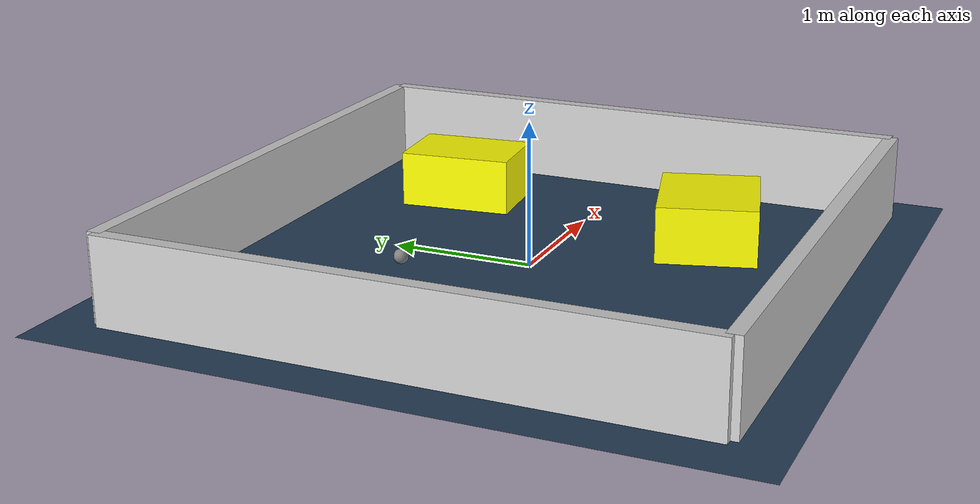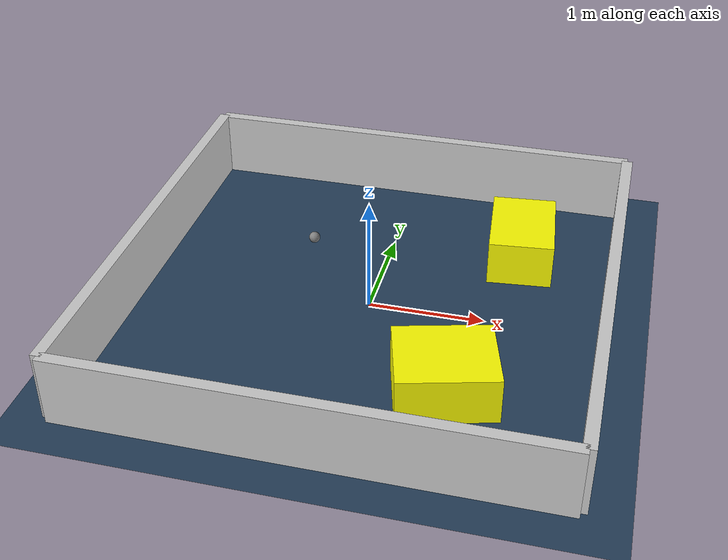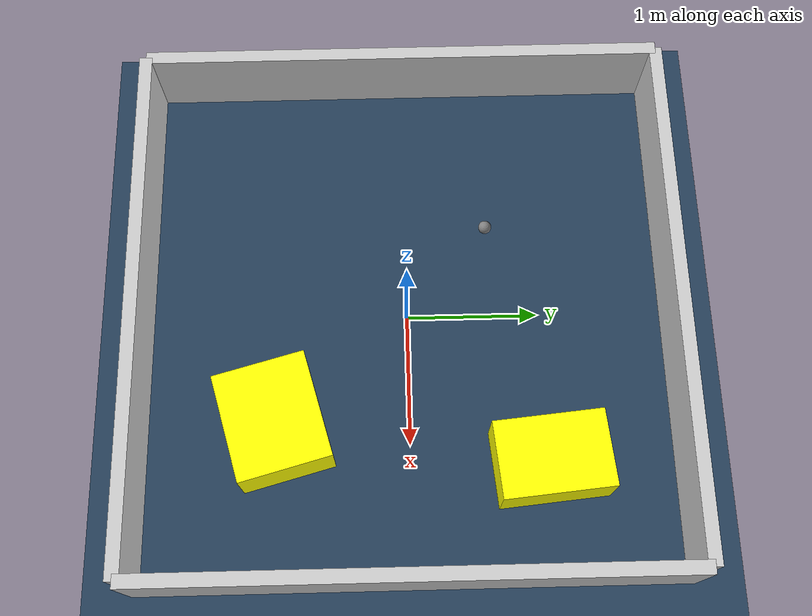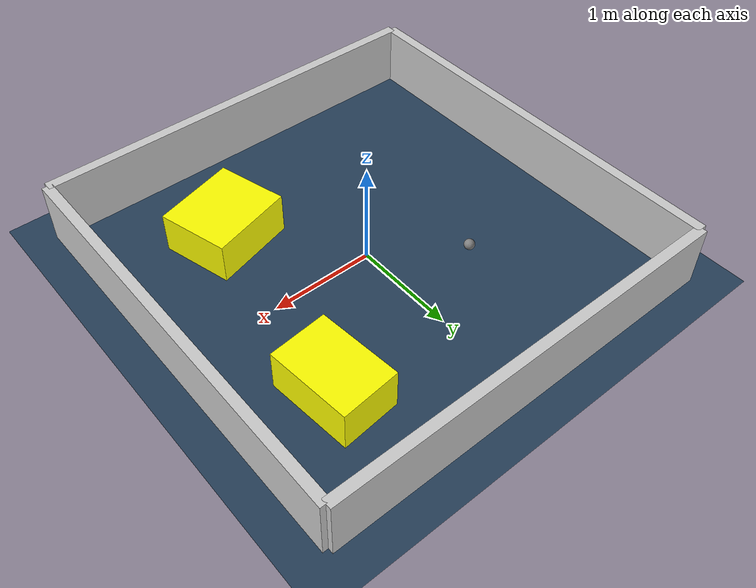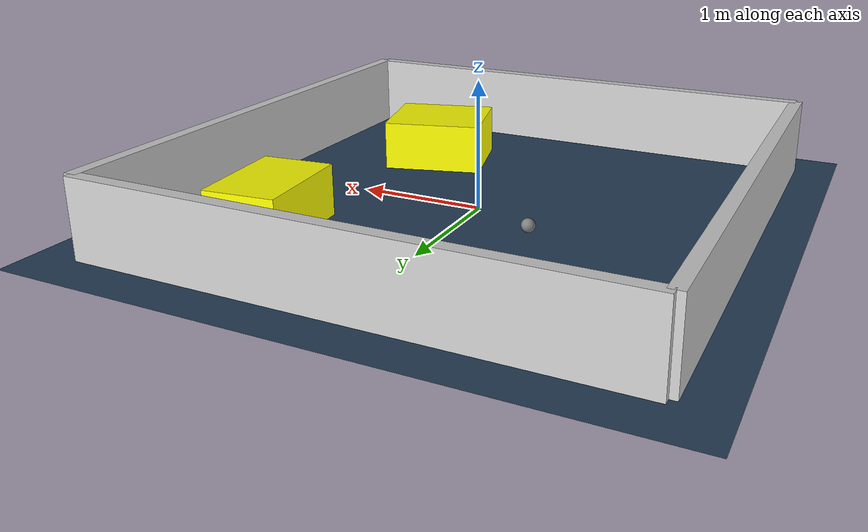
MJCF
<?xml version="1.0" ?>
<mujoco model="generated_environment">
  <option timestep="0.01" integrator="RK4" cone="elliptic"/>
  <default>
    <geom density="1"/>
  </default>
  <asset>
    <texture builtin="gradient" height="3072" rgb1="0.3 0.5 0.7" rgb2="0 0 0" type="skybox" width="512"/>
    <texture builtin="checker" height="300" mark="edge" markrgb="0.8 0.8 0.8" name="groundplane" rgb1="0.2 0.3 0.4" rgb2="0.1 0.2 0.3" type="2d" width="300"/>
    <material name="groundplane" reflectance="0.2" texrepeat="5 5" texture="groundplane" texuniform="true"/>
    <material name="robot" rgba="0.0 1.0 0.0 1"/>
  </asset>
  <worldbody>
    <light dir="0 0 -1" directional="true" pos="0 0 1.5"/>
    <geom condim="4" friction="1.0 0.005 0.001" material="groundplane" name="floor" size="0 0 0.05" type="plane"/>
    <body name="walls">
      <geom name="wall_1" condim="4" pos="-2.0 0.0 0.3" rgba="0.800000011920929 0.800000011920929 0.800000011920929 1.0" size="0.05 2.0 0.3" type="box"/>
      <geom name="wall_2" condim="4" pos="2.0 0.0 0.3" rgba="0.800000011920929 0.800000011920929 0.800000011920929 1.0" size="0.05 2.0 0.3" type="box"/>
      <geom name="wall_3" condim="4" pos="0.0 -2.0 0.3" rgba="0.800000011920929 0.800000011920929 0.800000011920929 1.0" size="2.0 0.05 0.3" type="box"/>
      <geom name="wall_4" condim="4" pos="0.0 2.0 0.3" rgba="0.800000011920929 0.800000011920929 0.800000011920929 1.0" size="2.0 0.05 0.3" type="box"/>
    </body>
    <body name="robot">
      <joint name="joint_x" type="slide" pos="0 0 0" axis="1 0 0"/>
      <joint name="joint_y" type="slide" pos="0 0 0" axis="0 1 0"/>
      <geom name="robot" type="sphere" pos="-0.6646152310068156 0.6202590467319147 0.2" size="0.05" mass="5." friction="1.0 0.005 0.0001" condim="4"/>
      <site name="sensor_ball"/>
    </body>
    <body name="obstacle_1_movable">
      <geom name="obstacle_1_movable" condim="4" pos="1.1690931753016125 1.0157328615983303 0.2" euler="0 0 185.60194698308607" friction="1.0 0.005 0.001" rgba="1 1 0 1" size="0.28256249796787936 0.4084276344530281 0.2" type="box" mass="0.1"/>
      <joint type="free"/>
    </body>
    <body name="obstacle_2_movable">
      <geom name="obstacle_2_movable" condim="4" pos="0.8490577267738342 -0.9912763355243832 0.2" euler="0 0 105.3097119443144" friction="1.0 0.005 0.001" rgba="1 1 0 1" size="0.3475554020408743 0.4044798557823287 0.2" type="box" mass="0.1"/>
      <joint type="free"/>
    </body>
  </worldbody>
  <actuator>
    <motor name="actuator_x" joint="joint_x" gear="1" ctrlrange="-1 1"/>
    <motor name="actuator_y" joint="joint_y" gear="1" ctrlrange="-1 1"/>
  </actuator>
</mujoco>
